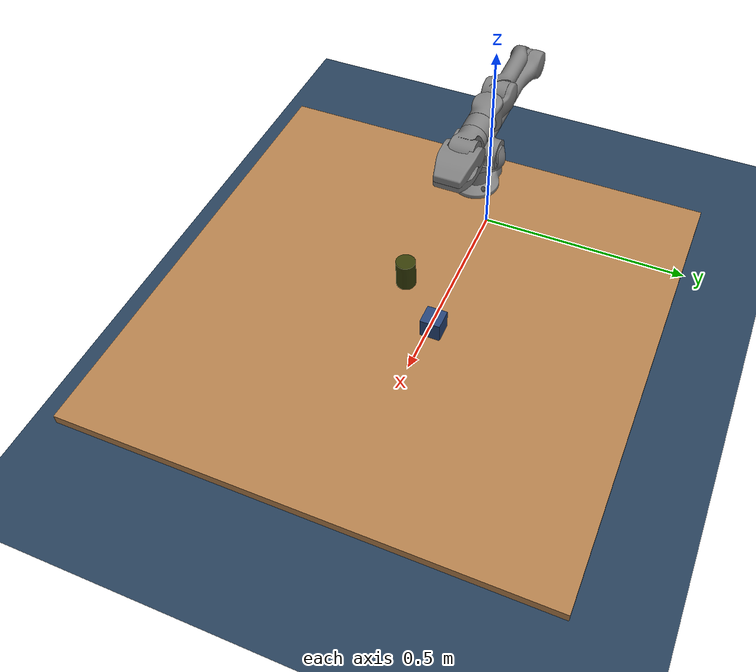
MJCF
<mujoco model="table_scene">
  <compiler angle="radian" meshdir="assets/"/>

  <option timestep="0.001" impratio="10" density="1.2" integrator="implicitfast" cone="elliptic">
    <flag multiccd="enable"/>
  </option>

  <size nkey="1"/>

  <visual>
    <global azimuth="120" elevation="-20"/>
    <quality shadowsize="8192"/>
    <headlight ambient="0.3 0.3 0.3" diffuse="0.5 0.5 0.5" specular="0 0 0"/>
    <scale forcewidth="0.025" contactwidth="0.05" contactheight="0.025" com="0.2" jointwidth="0.05" actuatorwidth="0.1" framelength="0.5" framewidth="0.02" constraint="0.02"/>
    <rgba haze="0.15 0.25 0.35 1"/>
  </visual>

  <statistic extent="1" center="0 0 0.1"/>

  <default>
    <default class="z1_main">
      <default class="z1_z1">
        <joint damping="1" frictionloss="1"/>
        <general forcerange="-30 30" biastype="affine" gainprm="1000" biasprm="0 -1000 -100"/>
        <default class="z1_visual">
          <geom type="mesh" contype="0" conaffinity="0" group="2"/>
        </default>
        <default class="z1_collision">
          <geom type="cylinder" group="3"/>
          <default class="z1_z1_gripper_stator_collision">
            <geom type="mesh"/>
          </default>
          <default class="z1_z1_gripper_stator_pad_collision_1">
            <geom size="0.014 0.015 0.004" type="box"/>
          </default>
          <default class="z1_z1_gripper_stator_pad_collision_2">
            <geom size="0.014 0.015 0.004" type="box"/>
          </default>
          <default class="z1_z1_gripper_mover_collision">
            <geom type="mesh"/>
          </default>
          <default class="z1_z1_gripper_mover_pad_collision_1">
            <geom size="0.014 0.015 0.004" type="box"/>
          </default>
          <default class="z1_z1_gripper_mover_pad_collision_2">
            <geom size="0.014 0.015 0.004" type="box"/>
          </default>
        </default>
      </default>
    </default>
  </default>

  <asset>
    <texture type="skybox" builtin="gradient" rgb1="0.3 0.5 0.7" rgb2="0 0 0" width="512" height="3072"/>
    <texture type="2d" name="groundplane" builtin="checker" mark="edge" rgb1="0.2 0.3 0.4" rgb2="0.1 0.2 0.3" markrgb="0.8 0.8 0.8" width="300" height="300"/>
    <texture type="2d" name="wood_tex" file="assets/wood.png"/>
    <material name="groundplane" texture="groundplane" texuniform="true" texrepeat="5 5" reflectance="0.2"/>
    <material name="wood" texture="wood_tex"/>
    <mesh name="z1_z1_Link00" file="z1_Link00.stl"/>
    <mesh name="z1_z1_Link01" file="z1_Link01.stl"/>
    <mesh name="z1_z1_Link02" file="z1_Link02.stl"/>
    <mesh name="z1_z1_Link03" file="z1_Link03.stl"/>
    <mesh name="z1_z1_Link04" file="z1_Link04.stl"/>
    <mesh name="z1_z1_Link05" file="z1_Link05.stl"/>
    <mesh name="z1_z1_Link06" file="z1_Link06.stl"/>
    <mesh name="z1_z1_GripperStator" file="z1_GripperStator.stl"/>
    <mesh name="z1_z1_GripperStator_col_1" file="z1_GripperStator_col_1.stl"/>
    <mesh name="z1_z1_GripperStator_col_2" file="z1_GripperStator_col_2.stl"/>
    <mesh name="z1_z1_GripperStator_col_3" file="z1_GripperStator_col_3.stl"/>
    <mesh name="z1_z1_GripperStator_col_4" file="z1_GripperStator_col_4.stl"/>
    <mesh name="z1_z1_GripperStator_col_5" file="z1_GripperStator_col_5.stl"/>
    <mesh name="z1_z1_GripperStator_col_6" file="z1_GripperStator_col_6.stl"/>
    <mesh name="z1_z1_GripperMover" file="z1_GripperMover.stl"/>
    <mesh name="z1_z1_GripperMover_col_1" file="z1_GripperMover_col_1.stl"/>
    <mesh name="z1_z1_GripperMover_col_2" file="z1_GripperMover_col_2.stl"/>
    <mesh name="z1_z1_GripperMover_col_3" file="z1_GripperMover_col_3.stl"/>
    <mesh name="z1_z1_GripperMover_col_4" file="z1_GripperMover_col_4.stl"/>
    <mesh name="z1_z1_GripperMover_col_5" file="z1_GripperMover_col_5.stl"/>
  </asset>

  <worldbody>
    <geom name="floor" size="0 0 0.05" type="plane" material="groundplane"/>
    <site name="robot" pos="0.1 0 0.21" rgba="0 0 1 1"/>
    <light pos="0 0 2" dir="0 0 -1" directional="true"/>
    <body name="table" pos="0.5 0 0.2">
      <geom size="0.5 0.5 0.01" type="box" material="wood"/>
      <camera name="table_cam" target="table" pos="-0.7 -0.7 0.2" mode="targetbody"/>
    </body>
    <body name="bin" pos="0.5 0 0.31">
      <joint type="free" limited="false" actuatorfrclimited="false"/>
      <geom size="0.02 0.03" type="cylinder" mass="0.05" rgba="0.210704 0.237627 0.0323554 1"/>
    </body>
    <body name="box" pos="0.6 0.1 0.31">
      <joint type="free" limited="false" actuatorfrclimited="false"/>
      <geom size="0.02 0.02 0.02" type="box" mass="0.05" rgba="0.148682 0.264276 0.468198 1"/>
    </body>
    <body name="z1_link00" childclass="z1_z1" pos="0.1 0 0.21">
      <inertial pos="-0.00334984 -0.00013615 0.0249584" quat="-0.00692194 0.682592 0.00133293 0.730766" mass="0.472475" diaginertia="0.000531375 0.000415207 0.000378658"/>
      <geom class="z1_visual" mesh="z1_z1_Link00"/>
      <geom class="z1_collision" size="0.0325 0.0255" pos="0 0 0.0255"/>
      <body name="z1_link01" pos="0 0 0.0585">
        <inertial pos="2.47e-06 -0.00025198 0.0231717" quat="0.708578 0.705633 0.000281462 -0.000355927" mass="0.673326" diaginertia="0.00128328 0.000839362 0.000719308"/>
        <joint name="z1_joint1" pos="0 0 0" axis="0 0 1" range="-2.61799 2.61799"/>
        <geom class="z1_visual" mesh="z1_z1_Link01"/>
        <body name="z1_link02" pos="0 0 0.045">
          <inertial pos="-0.110126 0.00240029 0.00158266" quat="0.00748058 0.707092 -0.0114473 0.70699" mass="1.19132" diaginertia="0.0246612 0.0243113 0.00100468"/>
          <joint name="z1_joint2" pos="0 0 0" axis="0 1 0" range="0 2.96706" damping="2"/>
          <geom class="z1_visual" mesh="z1_z1_Link02"/>
          <geom class="z1_collision" size="0.0325 0.051" quat="0.707107 0.707107 0 0"/>
          <geom class="z1_collision" size="0.0225 0.1175" pos="-0.1625 0 0" quat="0.707107 0 0.707107 0"/>
          <geom class="z1_collision" size="0.0325 0.0255" pos="-0.35 0 0" quat="0.707107 0.707107 0 0"/>
          <body name="z1_link03" pos="-0.35 0 0">
            <inertial pos="0.106092 -0.00541815 0.0347638" quat="0.540557 0.443575 0.426319 0.573839" mass="0.839409" diaginertia="0.00954365 0.00938711 0.000558432"/>
            <joint name="z1_joint3" pos="0 0 0" axis="0 1 0" range="-2.87979 0"/>
            <geom class="z1_visual" mesh="z1_z1_Link03"/>
            <geom class="z1_collision" size="0.02 0.058" pos="0.128 0 0.055" quat="0.707107 0 0.707107 0"/>
            <geom class="z1_collision" size="0.0325 0.0295" pos="0.2205 0 0.055" quat="0.5 -0.5 0.5 0.5"/>
            <body name="z1_link04" pos="0.218 0 0.057">
              <inertial pos="0.0436668 0.00364738 -0.00170192" quat="0.0390835 0.726445 -0.0526787 0.684087" mass="0.564046" diaginertia="0.000981656 0.00094053 0.000302655"/>
              <joint name="z1_joint4" pos="0 0 0" axis="0 1 0" range="-1.51844 1.51844"/>
              <geom class="z1_visual" mesh="z1_z1_Link04"/>
              <geom class="z1_collision" size="0.0325 0.0335" pos="0.072 0 0"/>
              <body name="z1_link05" pos="0.07 0 0">
                <inertial pos="0.0312153 0 0.00646316" quat="0.462205 0.535209 0.53785 0.45895" mass="0.389385" diaginertia="0.000558961 0.000547317 0.000167332"/>
                <joint name="z1_joint5" pos="0 0 0" axis="0 0 1" range="-1.3439 1.3439"/>
                <geom class="z1_visual" mesh="z1_z1_Link05"/>
                <body name="z1_link06" pos="0.0492 0 0">
                  <inertial pos="0.0241569 -0.00017355 -0.00143876" quat="0.998779 0.0457735 -0.00663717 0.0173548" mass="0.288758" diaginertia="0.00018333 0.000147464 0.000146786"/>
                  <joint name="z1_joint6" pos="0 0 0" axis="1 0 0" range="-2.79253 2.79253"/>
                  <geom class="z1_visual" mesh="z1_z1_Link06"/>
                  <geom class="z1_collision" size="0.0325 0.0255" pos="0.0255 0 0" quat="0.707107 0 0.707107 0"/>
                  <geom class="z1_visual" pos="0.051 0 0" quat="1 0 0 0" mesh="z1_z1_GripperStator"/>
                  <geom class="z1_z1_gripper_stator_collision" pos="0.051 0 0" quat="1 0 0 0" mesh="z1_z1_GripperStator_col_1"/>
                  <geom class="z1_z1_gripper_stator_collision" pos="0.051 0 0" quat="1 0 0 0" mesh="z1_z1_GripperStator_col_2"/>
                  <geom class="z1_z1_gripper_stator_collision" pos="0.051 0 0" quat="1 0 0 0" mesh="z1_z1_GripperStator_col_3"/>
                  <geom class="z1_z1_gripper_stator_collision" pos="0.051 0 0" quat="1 0 0 0" mesh="z1_z1_GripperStator_col_4"/>
                  <geom class="z1_z1_gripper_stator_collision" pos="0.051 0 0" quat="1 0 0 0" mesh="z1_z1_GripperStator_col_5"/>
                  <geom class="z1_z1_gripper_stator_collision" pos="0.051 0 0" quat="1 0 0 0" mesh="z1_z1_GripperStator_col_6"/>
                  <geom class="z1_z1_gripper_stator_pad_collision_1" pos="0.186 -0.015 -0.0125"/>
                  <geom class="z1_z1_gripper_stator_pad_collision_2" pos="0.186 0.015 -0.0125"/>
                  <camera name="wrist_cam" pos="0.1 0.08 0.02" quat="0.692666 -0.142175 -0.692666 -0.142175"/>
                  <body name="z1_gripperMover" pos="0.1 0 0">
                    <inertial pos="0.0132063 0.00476708 0.00380534" quat="0.0631093 0.669067 -0.0615783 0.737953" mass="0.276213" diaginertia="0.000359044 0.000270888 0.000172378"/>
                    <joint name="z1_jointGripper" pos="0 0 0" axis="0 1 0" range="-1.51844 0"/>
                    <geom class="z1_visual" mesh="z1_z1_GripperMover"/>
                    <geom class="z1_z1_gripper_mover_collision" mesh="z1_z1_GripperMover_col_1"/>
                    <geom class="z1_z1_gripper_mover_collision" mesh="z1_z1_GripperMover_col_2"/>
                    <geom class="z1_z1_gripper_mover_collision" mesh="z1_z1_GripperMover_col_3"/>
                    <geom class="z1_z1_gripper_mover_collision" mesh="z1_z1_GripperMover_col_4"/>
                    <geom class="z1_z1_gripper_mover_collision" mesh="z1_z1_GripperMover_col_5"/>
                    <geom class="z1_z1_gripper_mover_pad_collision_1" pos="0.086 -0.015 -0.0055"/>
                    <geom class="z1_z1_gripper_mover_pad_collision_2" pos="0.086 0.015 -0.0055"/>
                  </body>
                </body>
              </body>
            </body>
          </body>
        </body>
      </body>
    </body>
  </worldbody>

  <actuator>
    <general name="z1_motor1" class="z1_z1" joint="z1_joint1" ctrlrange="-2.61799 2.61799"/>
    <general name="z1_motor2" class="z1_z1" joint="z1_joint2" ctrlrange="0 2.96706" forcerange="-60 60" gainprm="1500" biasprm="0 -1500 -150"/>
    <general name="z1_motor3" class="z1_z1" joint="z1_joint3" ctrlrange="-2.87979 0"/>
    <general name="z1_motor4" class="z1_z1" joint="z1_joint4" ctrlrange="-1.51844 1.51844"/>
    <general name="z1_motor5" class="z1_z1" joint="z1_joint5" ctrlrange="-1.3439 1.3439"/>
    <general name="z1_motor6" class="z1_z1" joint="z1_joint6" ctrlrange="-2.79253 2.79253"/>
    <general name="z1_motorGripper" class="z1_z1" joint="z1_jointGripper" ctrlrange="-1.51844 0"/>
  </actuator>

  <keyframe>
    <key name="z1_home" qpos="0.5 0 0.31 1 0 0 0 0.6 0.1 0.31 1 0 0 0 0 0.785 -0.261 -0.523 0 0 0" ctrl="0 0.785 -0.261 -0.523 0 0 0"/>
  </keyframe>
</mujoco>
